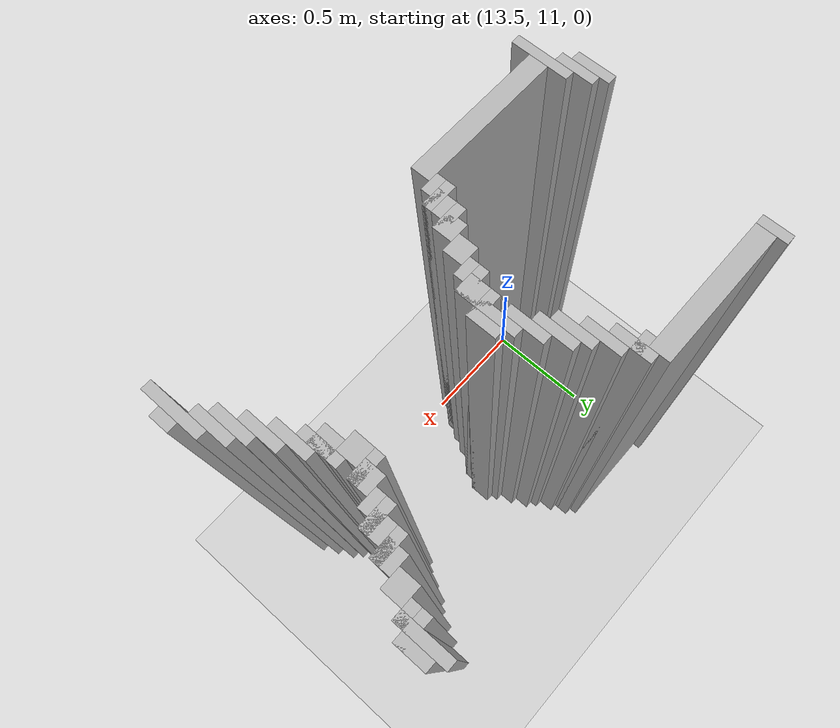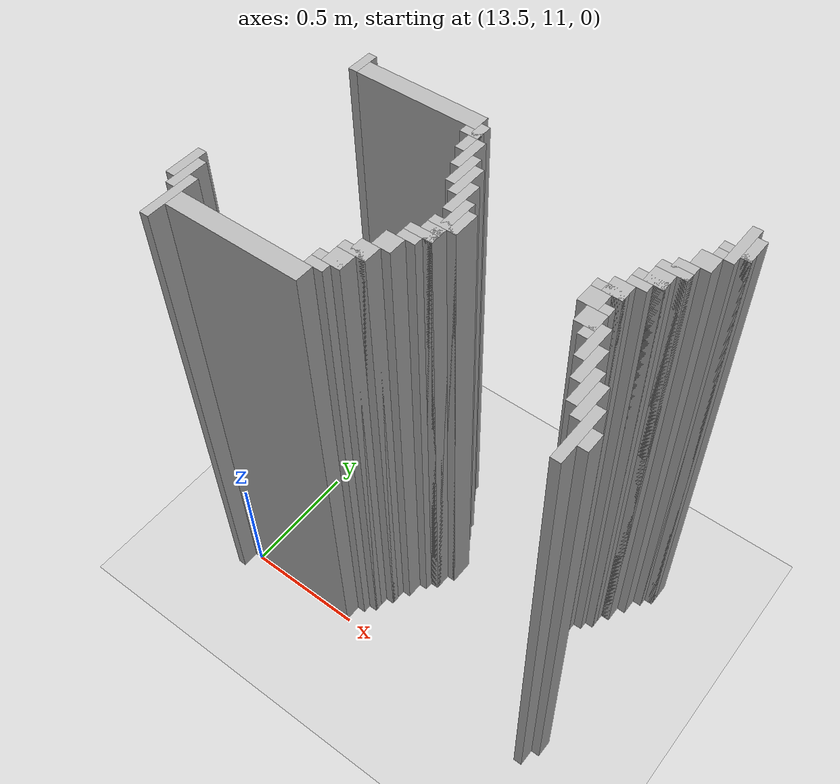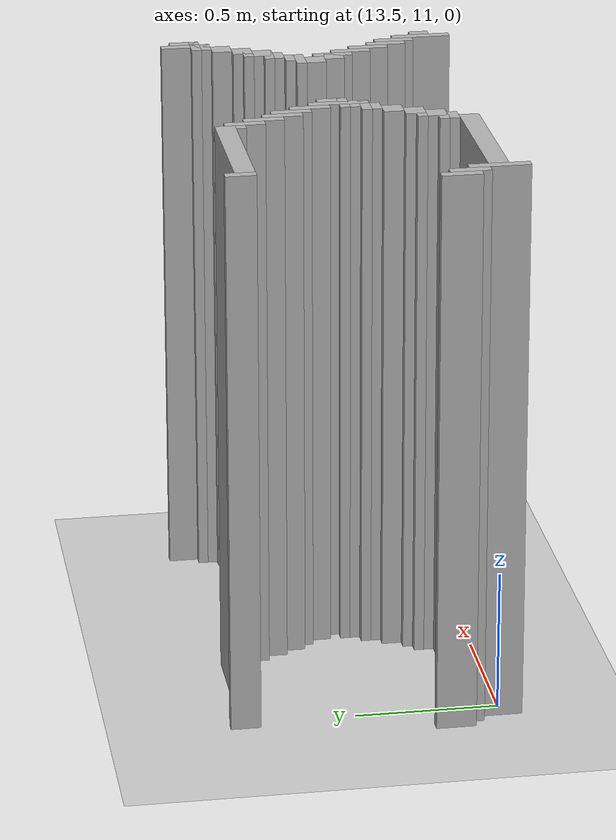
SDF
<sdf version="1.6">
 <world name="slam_world">
  <model name="ground_plane">
   <static>true</static>
   <link name="link">
    <collision name="collision">
     <geometry><plane><normal>0 0 1</normal><size>100 100</size></plane></geometry>
    </collision>
    <visual name="visual">
     <geometry><plane><normal>0 0 1</normal><size>100 100</size></plane></geometry>
     <material>
      <ambient>0.8 0.8 0.8 1</ambient>
      <diffuse>0.8 0.8 0.8 1</diffuse>
      <specular>0.8 0.8 0.8 1</specular>
     </material>
    </visual>
   </link>
  </model>
  <model name="wall_1848">
   <static>true</static>
   <pose>14.912993039443155 11.885150812064964 1.0 0 0 0</pose>
   <link name="link">
    <collision name="collision">
     <geometry><box><size>0.03480278422273782 0.17401392111368907 2.0</size></box></geometry>
    </collision>
    <visual name="visual">
     <geometry><box><size>0.03480278422273782 0.17401392111368907 2.0</size></box></geometry>
     <material><ambient>0.5 0.5 0.5 1</ambient><diffuse>0.7 0.7 0.7 1</diffuse></material>
    </visual>
   </link>
  </model>
  <model name="wall_1863">
   <static>true</static>
   <pose>13.486078886310905 11.885150812064964 1.0 0 0 0</pose>
   <link name="link">
    <collision name="collision">
     <geometry><box><size>0.03480278422273782 0.10440835266821345 2.0</size></box></geometry>
    </collision>
    <visual name="visual">
     <geometry><box><size>0.03480278422273782 0.10440835266821345 2.0</size></box></geometry>
     <material><ambient>0.5 0.5 0.5 1</ambient><diffuse>0.7 0.7 0.7 1</diffuse></material>
    </visual>
   </link>
  </model>
  <model name="wall_1864">
   <static>true</static>
   <pose>14.947795823665892 11.885150812064964 1.0 0 0 0</pose>
   <link name="link">
    <collision name="collision">
     <geometry><box><size>0.03480278422273782 0.10440835266821345 2.0</size></box></geometry>
    </collision>
    <visual name="visual">
     <geometry><box><size>0.03480278422273782 0.10440835266821345 2.0</size></box></geometry>
     <material><ambient>0.5 0.5 0.5 1</ambient><diffuse>0.7 0.7 0.7 1</diffuse></material>
    </visual>
   </link>
  </model>
  <model name="wall_1876">
   <static>true</static>
   <pose>13.747099767981437 11.867749419953595 1.0 0 0 0</pose>
   <link name="link">
    <collision name="collision">
     <geometry><box><size>0.4872389791183295 0.06960556844547564 2.0</size></box></geometry>
    </collision>
    <visual name="visual">
     <geometry><box><size>0.4872389791183295 0.06960556844547564 2.0</size></box></geometry>
     <material><ambient>0.5 0.5 0.5 1</ambient><diffuse>0.7 0.7 0.7 1</diffuse></material>
    </visual>
   </link>
  </model>
  <model name="wall_1891">
   <static>true</static>
   <pose>14.008120649651971 11.79814385150812 1.0 0 0 0</pose>
   <link name="link">
    <collision name="collision">
     <geometry><box><size>0.03480278422273782 0.13921113689095127 2.0</size></box></geometry>
    </collision>
    <visual name="visual">
     <geometry><box><size>0.03480278422273782 0.13921113689095127 2.0</size></box></geometry>
     <material><ambient>0.5 0.5 0.5 1</ambient><diffuse>0.7 0.7 0.7 1</diffuse></material>
    </visual>
   </link>
  </model>
  <model name="wall_1892">
   <static>true</static>
   <pose>14.912993039443155 11.850348027842227 1.0 0 0 0</pose>
   <link name="link">
    <collision name="collision">
     <geometry><box><size>0.10440835266821345 0.03480278422273782 2.0</size></box></geometry>
    </collision>
    <visual name="visual">
     <geometry><box><size>0.10440835266821345 0.03480278422273782 2.0</size></box></geometry>
     <material><ambient>0.5 0.5 0.5 1</ambient><diffuse>0.7 0.7 0.7 1</diffuse></material>
    </visual>
   </link>
  </model>
  <model name="wall_1907">
   <static>true</static>
   <pose>13.990719257540603 11.81554524361949 1.0 0 0 0</pose>
   <link name="link">
    <collision name="collision">
     <geometry><box><size>0.06960556844547564 0.03480278422273782 2.0</size></box></geometry>
    </collision>
    <visual name="visual">
     <geometry><box><size>0.06960556844547564 0.03480278422273782 2.0</size></box></geometry>
     <material><ambient>0.5 0.5 0.5 1</ambient><diffuse>0.7 0.7 0.7 1</diffuse></material>
    </visual>
   </link>
  </model>
  <model name="wall_1908">
   <static>true</static>
   <pose>14.895591647331786 11.81554524361949 1.0 0 0 0</pose>
   <link name="link">
    <collision name="collision">
     <geometry><box><size>0.06960556844547564 0.03480278422273782 2.0</size></box></geometry>
    </collision>
    <visual name="visual">
     <geometry><box><size>0.06960556844547564 0.03480278422273782 2.0</size></box></geometry>
     <material><ambient>0.5 0.5 0.5 1</ambient><diffuse>0.7 0.7 0.7 1</diffuse></material>
    </visual>
   </link>
  </model>
  <model name="wall_1923">
   <static>true</static>
   <pose>14.042923433874709 11.728538283062644 1.0 0 0 0</pose>
   <link name="link">
    <collision name="collision">
     <geometry><box><size>0.03480278422273782 0.13921113689095127 2.0</size></box></geometry>
    </collision>
    <visual name="visual">
     <geometry><box><size>0.03480278422273782 0.13921113689095127 2.0</size></box></geometry>
     <material><ambient>0.5 0.5 0.5 1</ambient><diffuse>0.7 0.7 0.7 1</diffuse></material>
    </visual>
   </link>
  </model>
  <model name="wall_1924">
   <static>true</static>
   <pose>14.860788863109049 11.763341067285383 1.0 0 0 0</pose>
   <link name="link">
    <collision name="collision">
     <geometry><box><size>0.06960556844547564 0.06960556844547564 2.0</size></box></geometry>
    </collision>
    <visual name="visual">
     <geometry><box><size>0.06960556844547564 0.06960556844547564 2.0</size></box></geometry>
     <material><ambient>0.5 0.5 0.5 1</ambient><diffuse>0.7 0.7 0.7 1</diffuse></material>
    </visual>
   </link>
  </model>
  <model name="wall_1939">
   <static>true</static>
   <pose>14.077726218097448 11.658932714617169 1.0 0 0 0</pose>
   <link name="link">
    <collision name="collision">
     <geometry><box><size>0.03480278422273782 0.13921113689095127 2.0</size></box></geometry>
    </collision>
    <visual name="visual">
     <geometry><box><size>0.03480278422273782 0.13921113689095127 2.0</size></box></geometry>
     <material><ambient>0.5 0.5 0.5 1</ambient><diffuse>0.7 0.7 0.7 1</diffuse></material>
    </visual>
   </link>
  </model>
  <model name="wall_1940">
   <static>true</static>
   <pose>14.825986078886311 11.693735498839906 1.0 0 0 0</pose>
   <link name="link">
    <collision name="collision">
     <geometry><box><size>0.06960556844547564 0.06960556844547564 2.0</size></box></geometry>
    </collision>
    <visual name="visual">
     <geometry><box><size>0.06960556844547564 0.06960556844547564 2.0</size></box></geometry>
     <material><ambient>0.5 0.5 0.5 1</ambient><diffuse>0.7 0.7 0.7 1</diffuse></material>
    </visual>
   </link>
  </model>
  <model name="wall_1955">
   <static>true</static>
   <pose>14.112529002320185 11.624129930394432 1.0 0 0 0</pose>
   <link name="link">
    <collision name="collision">
     <geometry><box><size>0.03480278422273782 0.13921113689095127 2.0</size></box></geometry>
    </collision>
    <visual name="visual">
     <geometry><box><size>0.03480278422273782 0.13921113689095127 2.0</size></box></geometry>
     <material><ambient>0.5 0.5 0.5 1</ambient><diffuse>0.7 0.7 0.7 1</diffuse></material>
    </visual>
   </link>
  </model>
  <model name="wall_1956">
   <static>true</static>
   <pose>14.80858468677494 11.676334106728538 1.0 0 0 0</pose>
   <link name="link">
    <collision name="collision">
     <geometry><box><size>0.10440835266821345 0.03480278422273782 2.0</size></box></geometry>
    </collision>
    <visual name="visual">
     <geometry><box><size>0.10440835266821345 0.03480278422273782 2.0</size></box></geometry>
     <material><ambient>0.5 0.5 0.5 1</ambient><diffuse>0.7 0.7 0.7 1</diffuse></material>
    </visual>
   </link>
  </model>
  <model name="wall_1965">
   <static>true</static>
   <pose>14.791183294663572 11.624129930394432 1.0 0 0 0</pose>
   <link name="link">
    <collision name="collision">
     <geometry><box><size>0.06960556844547564 0.06960556844547564 2.0</size></box></geometry>
    </collision>
    <visual name="visual">
     <geometry><box><size>0.06960556844547564 0.06960556844547564 2.0</size></box></geometry>
     <material><ambient>0.5 0.5 0.5 1</ambient><diffuse>0.7 0.7 0.7 1</diffuse></material>
    </visual>
   </link>
  </model>
  <model name="wall_1980">
   <static>true</static>
   <pose>14.147331786542923 11.554524361948955 1.0 0 0 0</pose>
   <link name="link">
    <collision name="collision">
     <geometry><box><size>0.03480278422273782 0.13921113689095127 2.0</size></box></geometry>
    </collision>
    <visual name="visual">
     <geometry><box><size>0.03480278422273782 0.13921113689095127 2.0</size></box></geometry>
     <material><ambient>0.5 0.5 0.5 1</ambient><diffuse>0.7 0.7 0.7 1</diffuse></material>
    </visual>
   </link>
  </model>
  <model name="wall_1981">
   <static>true</static>
   <pose>14.773781902552203 11.606728538283063 1.0 0 0 0</pose>
   <link name="link">
    <collision name="collision">
     <geometry><box><size>0.10440835266821345 0.03480278422273782 2.0</size></box></geometry>
    </collision>
    <visual name="visual">
     <geometry><box><size>0.10440835266821345 0.03480278422273782 2.0</size></box></geometry>
     <material><ambient>0.5 0.5 0.5 1</ambient><diffuse>0.7 0.7 0.7 1</diffuse></material>
    </visual>
   </link>
  </model>
  <model name="wall_1990">
   <static>true</static>
   <pose>14.756380510440835 11.571925754060324 1.0 0 0 0</pose>
   <link name="link">
    <collision name="collision">
     <geometry><box><size>0.06960556844547564 0.03480278422273782 2.0</size></box></geometry>
    </collision>
    <visual name="visual">
     <geometry><box><size>0.06960556844547564 0.03480278422273782 2.0</size></box></geometry>
     <material><ambient>0.5 0.5 0.5 1</ambient><diffuse>0.7 0.7 0.7 1</diffuse></material>
    </visual>
   </link>
  </model>
  <model name="wall_2005">
   <static>true</static>
   <pose>14.18213457076566 11.450116009280743 1.0 0 0 0</pose>
   <link name="link">
    <collision name="collision">
     <geometry><box><size>0.03480278422273782 0.2088167053364269 2.0</size></box></geometry>
    </collision>
    <visual name="visual">
     <geometry><box><size>0.03480278422273782 0.2088167053364269 2.0</size></box></geometry>
     <material><ambient>0.5 0.5 0.5 1</ambient><diffuse>0.7 0.7 0.7 1</diffuse></material>
    </visual>
   </link>
  </model>
  <model name="wall_2006">
   <static>true</static>
   <pose>14.721577726218097 11.519721577726218 1.0 0 0 0</pose>
   <link name="link">
    <collision name="collision">
     <geometry><box><size>0.06960556844547564 0.06960556844547564 2.0</size></box></geometry>
    </collision>
    <visual name="visual">
     <geometry><box><size>0.06960556844547564 0.06960556844547564 2.0</size></box></geometry>
     <material><ambient>0.5 0.5 0.5 1</ambient><diffuse>0.7 0.7 0.7 1</diffuse></material>
    </visual>
   </link>
  </model>
  <model name="wall_2020">
   <static>true</static>
   <pose>14.2169373549884 11.467517401392112 1.0 0 0 0</pose>
   <link name="link">
    <collision name="collision">
     <geometry><box><size>0.03480278422273782 0.10440835266821345 2.0</size></box></geometry>
    </collision>
    <visual name="visual">
     <geometry><box><size>0.03480278422273782 0.10440835266821345 2.0</size></box></geometry>
     <material><ambient>0.5 0.5 0.5 1</ambient><diffuse>0.7 0.7 0.7 1</diffuse></material>
    </visual>
   </link>
  </model>
  <model name="wall_2021">
   <static>true</static>
   <pose>14.704176334106728 11.502320185614849 1.0 0 0 0</pose>
   <link name="link">
    <collision name="collision">
     <geometry><box><size>0.10440835266821345 0.03480278422273782 2.0</size></box></geometry>
    </collision>
    <visual name="visual">
     <geometry><box><size>0.10440835266821345 0.03480278422273782 2.0</size></box></geometry>
     <material><ambient>0.5 0.5 0.5 1</ambient><diffuse>0.7 0.7 0.7 1</diffuse></material>
    </visual>
   </link>
  </model>
  <model name="wall_2033">
   <static>true</static>
   <pose>14.68677494199536 11.450116009280743 1.0 0 0 0</pose>
   <link name="link">
    <collision name="collision">
     <geometry><box><size>0.06960556844547564 0.06960556844547564 2.0</size></box></geometry>
    </collision>
    <visual name="visual">
     <geometry><box><size>0.06960556844547564 0.06960556844547564 2.0</size></box></geometry>
     <material><ambient>0.5 0.5 0.5 1</ambient><diffuse>0.7 0.7 0.7 1</diffuse></material>
    </visual>
   </link>
  </model>
  <model name="wall_2048">
   <static>true</static>
   <pose>14.18213457076566 11.432714617169372 1.0 0 0 0</pose>
   <link name="link">
    <collision name="collision">
     <geometry><box><size>0.10440835266821345 0.03480278422273782 2.0</size></box></geometry>
    </collision>
    <visual name="visual">
     <geometry><box><size>0.10440835266821345 0.03480278422273782 2.0</size></box></geometry>
     <material><ambient>0.5 0.5 0.5 1</ambient><diffuse>0.7 0.7 0.7 1</diffuse></material>
    </visual>
   </link>
  </model>
  <model name="wall_2049">
   <static>true</static>
   <pose>14.738979118329466 11.380510440835266 1.0 0 0 0</pose>
   <link name="link">
    <collision name="collision">
     <geometry><box><size>0.03480278422273782 0.13921113689095127 2.0</size></box></geometry>
    </collision>
    <visual name="visual">
     <geometry><box><size>0.03480278422273782 0.13921113689095127 2.0</size></box></geometry>
     <material><ambient>0.5 0.5 0.5 1</ambient><diffuse>0.7 0.7 0.7 1</diffuse></material>
    </visual>
   </link>
  </model>
  <model name="wall_2065">
   <static>true</static>
   <pose>14.164733178654291 11.380510440835266 1.0 0 0 0</pose>
   <link name="link">
    <collision name="collision">
     <geometry><box><size>0.06960556844547564 0.06960556844547564 2.0</size></box></geometry>
    </collision>
    <visual name="visual">
     <geometry><box><size>0.06960556844547564 0.06960556844547564 2.0</size></box></geometry>
     <material><ambient>0.5 0.5 0.5 1</ambient><diffuse>0.7 0.7 0.7 1</diffuse></material>
    </visual>
   </link>
  </model>
  <model name="wall_2066">
   <static>true</static>
   <pose>14.721577726218097 11.380510440835266 1.0 0 0 0</pose>
   <link name="link">
    <collision name="collision">
     <geometry><box><size>0.06960556844547564 0.06960556844547564 2.0</size></box></geometry>
    </collision>
    <visual name="visual">
     <geometry><box><size>0.06960556844547564 0.06960556844547564 2.0</size></box></geometry>
     <material><ambient>0.5 0.5 0.5 1</ambient><diffuse>0.7 0.7 0.7 1</diffuse></material>
    </visual>
   </link>
  </model>
  <model name="wall_2082">
   <static>true</static>
   <pose>14.147331786542923 11.363109048723897 1.0 0 0 0</pose>
   <link name="link">
    <collision name="collision">
     <geometry><box><size>0.10440835266821345 0.03480278422273782 2.0</size></box></geometry>
    </collision>
    <visual name="visual">
     <geometry><box><size>0.10440835266821345 0.03480278422273782 2.0</size></box></geometry>
     <material><ambient>0.5 0.5 0.5 1</ambient><diffuse>0.7 0.7 0.7 1</diffuse></material>
    </visual>
   </link>
  </model>
  <model name="wall_2083">
   <static>true</static>
   <pose>14.773781902552203 11.310904872389791 1.0 0 0 0</pose>
   <link name="link">
    <collision name="collision">
     <geometry><box><size>0.03480278422273782 0.13921113689095127 2.0</size></box></geometry>
    </collision>
    <visual name="visual">
     <geometry><box><size>0.03480278422273782 0.13921113689095127 2.0</size></box></geometry>
     <material><ambient>0.5 0.5 0.5 1</ambient><diffuse>0.7 0.7 0.7 1</diffuse></material>
    </visual>
   </link>
  </model>
  <model name="wall_2091">
   <static>true</static>
   <pose>14.129930394431554 11.32830626450116 1.0 0 0 0</pose>
   <link name="link">
    <collision name="collision">
     <geometry><box><size>0.06960556844547564 0.03480278422273782 2.0</size></box></geometry>
    </collision>
    <visual name="visual">
     <geometry><box><size>0.06960556844547564 0.03480278422273782 2.0</size></box></geometry>
     <material><ambient>0.5 0.5 0.5 1</ambient><diffuse>0.7 0.7 0.7 1</diffuse></material>
    </visual>
   </link>
  </model>
  <model name="wall_2107">
   <static>true</static>
   <pose>14.095127610208817 11.276102088167052 1.0 0 0 0</pose>
   <link name="link">
    <collision name="collision">
     <geometry><box><size>0.06960556844547564 0.06960556844547564 2.0</size></box></geometry>
    </collision>
    <visual name="visual">
     <geometry><box><size>0.06960556844547564 0.06960556844547564 2.0</size></box></geometry>
     <material><ambient>0.5 0.5 0.5 1</ambient><diffuse>0.7 0.7 0.7 1</diffuse></material>
    </visual>
   </link>
  </model>
  <model name="wall_2108">
   <static>true</static>
   <pose>14.80858468677494 11.241299303944315 1.0 0 0 0</pose>
   <link name="link">
    <collision name="collision">
     <geometry><box><size>0.03480278422273782 0.13921113689095127 2.0</size></box></geometry>
    </collision>
    <visual name="visual">
     <geometry><box><size>0.03480278422273782 0.13921113689095127 2.0</size></box></geometry>
     <material><ambient>0.5 0.5 0.5 1</ambient><diffuse>0.7 0.7 0.7 1</diffuse></material>
    </visual>
   </link>
  </model>
  <model name="wall_2123">
   <static>true</static>
   <pose>13.38167053364269 11.17169373549884 1.0 0 0 0</pose>
   <link name="link">
    <collision name="collision">
     <geometry><box><size>0.03480278422273782 0.13921113689095127 2.0</size></box></geometry>
    </collision>
    <visual name="visual">
     <geometry><box><size>0.03480278422273782 0.13921113689095127 2.0</size></box></geometry>
     <material><ambient>0.5 0.5 0.5 1</ambient><diffuse>0.7 0.7 0.7 1</diffuse></material>
    </visual>
   </link>
  </model>
  <model name="wall_2124">
   <static>true</static>
   <pose>14.06032482598608 11.206496519721577 1.0 0 0 0</pose>
   <link name="link">
    <collision name="collision">
     <geometry><box><size>0.06960556844547564 0.06960556844547564 2.0</size></box></geometry>
    </collision>
    <visual name="visual">
     <geometry><box><size>0.06960556844547564 0.06960556844547564 2.0</size></box></geometry>
     <material><ambient>0.5 0.5 0.5 1</ambient><diffuse>0.7 0.7 0.7 1</diffuse></material>
    </visual>
   </link>
  </model>
  <model name="wall_2125">
   <static>true</static>
   <pose>14.84338747099768 11.17169373549884 1.0 0 0 0</pose>
   <link name="link">
    <collision name="collision">
     <geometry><box><size>0.03480278422273782 0.13921113689095127 2.0</size></box></geometry>
    </collision>
    <visual name="visual">
     <geometry><box><size>0.03480278422273782 0.13921113689095127 2.0</size></box></geometry>
     <material><ambient>0.5 0.5 0.5 1</ambient><diffuse>0.7 0.7 0.7 1</diffuse></material>
    </visual>
   </link>
  </model>
  <model name="wall_2140">
   <static>true</static>
   <pose>13.416473317865428 11.1368909512761 1.0 0 0 0</pose>
   <link name="link">
    <collision name="collision">
     <geometry><box><size>0.03480278422273782 0.13921113689095127 2.0</size></box></geometry>
    </collision>
    <visual name="visual">
     <geometry><box><size>0.03480278422273782 0.13921113689095127 2.0</size></box></geometry>
     <material><ambient>0.5 0.5 0.5 1</ambient><diffuse>0.7 0.7 0.7 1</diffuse></material>
    </visual>
   </link>
  </model>
  <model name="wall_2141">
   <static>true</static>
   <pose>14.042923433874709 11.189095127610209 1.0 0 0 0</pose>
   <link name="link">
    <collision name="collision">
     <geometry><box><size>0.10440835266821345 0.03480278422273782 2.0</size></box></geometry>
    </collision>
    <visual name="visual">
     <geometry><box><size>0.10440835266821345 0.03480278422273782 2.0</size></box></geometry>
     <material><ambient>0.5 0.5 0.5 1</ambient><diffuse>0.7 0.7 0.7 1</diffuse></material>
    </visual>
   </link>
  </model>
  <model name="wall_2142">
   <static>true</static>
   <pose>14.878190255220417 11.1368909512761 1.0 0 0 0</pose>
   <link name="link">
    <collision name="collision">
     <geometry><box><size>0.03480278422273782 0.13921113689095127 2.0</size></box></geometry>
    </collision>
    <visual name="visual">
     <geometry><box><size>0.03480278422273782 0.13921113689095127 2.0</size></box></geometry>
     <material><ambient>0.5 0.5 0.5 1</ambient><diffuse>0.7 0.7 0.7 1</diffuse></material>
    </visual>
   </link>
  </model>
  <model name="wall_2149">
   <static>true</static>
   <pose>14.02552204176334 11.1368909512761 1.0 0 0 0</pose>
   <link name="link">
    <collision name="collision">
     <geometry><box><size>0.06960556844547564 0.06960556844547564 2.0</size></box></geometry>
    </collision>
    <visual name="visual">
     <geometry><box><size>0.06960556844547564 0.06960556844547564 2.0</size></box></geometry>
     <material><ambient>0.5 0.5 0.5 1</ambient><diffuse>0.7 0.7 0.7 1</diffuse></material>
    </visual>
   </link>
  </model>
  <model name="wall_2164">
   <static>true</static>
   <pose>13.451276102088167 11.032482598607888 1.0 0 0 0</pose>
   <link name="link">
    <collision name="collision">
     <geometry><box><size>0.03480278422273782 0.2088167053364269 2.0</size></box></geometry>
    </collision>
    <visual name="visual">
     <geometry><box><size>0.03480278422273782 0.2088167053364269 2.0</size></box></geometry>
     <material><ambient>0.5 0.5 0.5 1</ambient><diffuse>0.7 0.7 0.7 1</diffuse></material>
    </visual>
   </link>
  </model>
  <model name="wall_2165">
   <static>true</static>
   <pose>14.008120649651971 11.119489559164732 1.0 0 0 0</pose>
   <link name="link">
    <collision name="collision">
     <geometry><box><size>0.10440835266821345 0.03480278422273782 2.0</size></box></geometry>
    </collision>
    <visual name="visual">
     <geometry><box><size>0.10440835266821345 0.03480278422273782 2.0</size></box></geometry>
     <material><ambient>0.5 0.5 0.5 1</ambient><diffuse>0.7 0.7 0.7 1</diffuse></material>
    </visual>
   </link>
  </model>
  <model name="wall_2166">
   <static>true</static>
   <pose>14.912993039443155 11.032482598607888 1.0 0 0 0</pose>
   <link name="link">
    <collision name="collision">
     <geometry><box><size>0.03480278422273782 0.2088167053364269 2.0</size></box></geometry>
    </collision>
    <visual name="visual">
     <geometry><box><size>0.03480278422273782 0.2088167053364269 2.0</size></box></geometry>
     <material><ambient>0.5 0.5 0.5 1</ambient><diffuse>0.7 0.7 0.7 1</diffuse></material>
    </visual>
   </link>
  </model>
  <model name="wall_2173">
   <static>true</static>
   <pose>13.990719257540603 11.084686774941995 1.0 0 0 0</pose>
   <link name="link">
    <collision name="collision">
     <geometry><box><size>0.06960556844547564 0.03480278422273782 2.0</size></box></geometry>
    </collision>
    <visual name="visual">
     <geometry><box><size>0.06960556844547564 0.03480278422273782 2.0</size></box></geometry>
     <material><ambient>0.5 0.5 0.5 1</ambient><diffuse>0.7 0.7 0.7 1</diffuse></material>
    </visual>
   </link>
  </model>
  <model name="wall_2184">
   <static>true</static>
   <pose>13.729698375870068 11.032482598607888 1.0 0 0 0</pose>
   <link name="link">
    <collision name="collision">
     <geometry><box><size>0.5220417633410672 0.06960556844547564 2.0</size></box></geometry>
    </collision>
    <visual name="visual">
     <geometry><box><size>0.5220417633410672 0.06960556844547564 2.0</size></box></geometry>
     <material><ambient>0.5 0.5 0.5 1</ambient><diffuse>0.7 0.7 0.7 1</diffuse></material>
    </visual>
   </link>
  </model>
  <model name="wall_2185">
   <static>true</static>
   <pose>14.947795823665892 11.032482598607888 1.0 0 0 0</pose>
   <link name="link">
    <collision name="collision">
     <geometry><box><size>0.03480278422273782 0.06960556844547564 2.0</size></box></geometry>
    </collision>
    <visual name="visual">
     <geometry><box><size>0.03480278422273782 0.06960556844547564 2.0</size></box></geometry>
     <material><ambient>0.5 0.5 0.5 1</ambient><diffuse>0.7 0.7 0.7 1</diffuse></material>
    </visual>
   </link>
  </model>
 </world>
</sdf>
